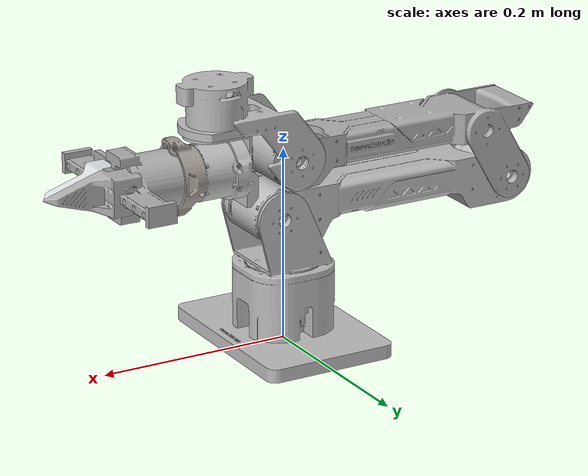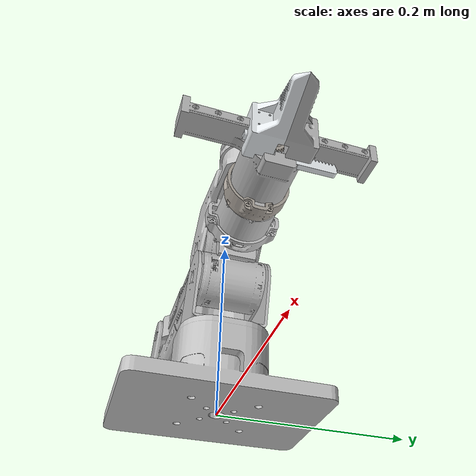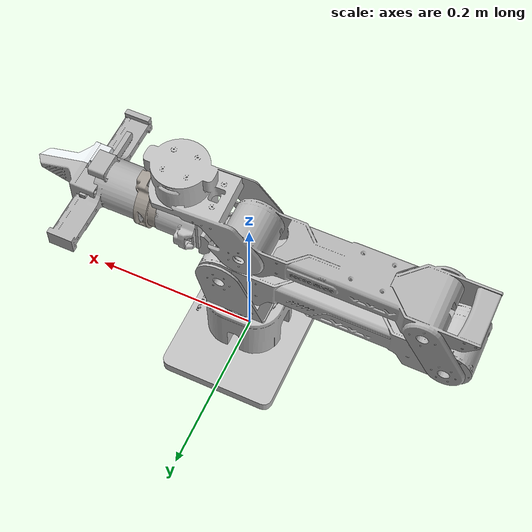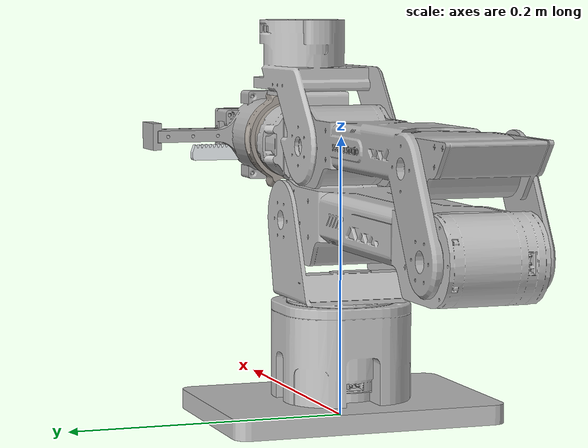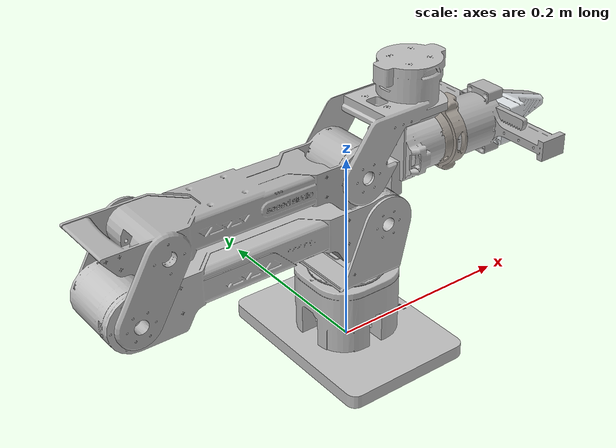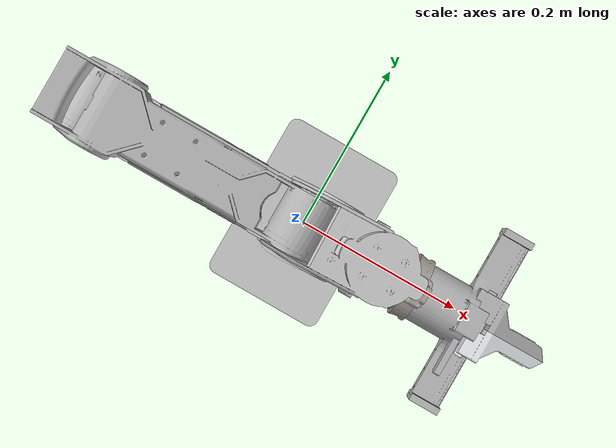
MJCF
<mujoco model="joyarm_dm">
  <compiler angle="radian"/>

  <asset>
    <mesh name="link0" content_type="model/stl" file="../meshes/link0.STL"/>
    <mesh name="link1" content_type="model/stl" file="../meshes/link1.STL"/>
    <mesh name="link2" content_type="model/stl" file="../meshes/link2.STL"/>
    <mesh name="link3" content_type="model/stl" file="../meshes/link3.STL"/>
    <mesh name="link4" content_type="model/stl" file="../meshes/link4.STL"/>
    <mesh name="link5" content_type="model/stl" file="../meshes/link5.STL"/>
    <mesh name="link6" content_type="model/stl" file="../meshes/link6.STL"/>
    <mesh name="link_end0" content_type="model/stl" file="../meshes/link_end0.STL"/>
    <mesh name="link_end1" content_type="model/stl" file="../meshes/link_end1.STL"/>
    <mesh name="link_end_fingerright" content_type="model/stl" file="../meshes/link_end_fingerright.STL"/>
    <mesh name="link_end_fingerleft" content_type="model/stl" file="../meshes/link_end_fingerleft.STL"/>
  </asset>

  <worldbody>
    <geom type="mesh" rgba="0.75294 0.75294 0.75294 1" mesh="link0"/>
    <body name="link1" pos="0 0 0.1402">
      <inertial pos="0.006732 -0.002604 -0.030755" quat="0.903333 0.352003 0.22575 -0.0954998" mass="0.217" diaginertia="0.000360731 0.000254975 0.000217013"/>
      <joint name="joint1" range="-2.8 2.8" actuatorfrcrange="-30 30"/>
      <geom type="mesh" rgba="0.75294 0.75294 0.75294 1" mesh="link1"/>
      <body name="link2" pos="0.02 0 0" quat="-2.59735e-06 2.59734e-06 -0.707105 0.707108">
        <inertial pos="0.133871 -0.001318 -0.001129" quat="0.497215 0.502645 0.495442 0.504642" mass="1.196" diaginertia="0.0172404 0.0170399 0.000684457"/>
        <joint name="joint2" range="-3.14 0" actuatorfrcrange="-30 30"/>
        <geom pos="0 0 0" quat="0 1 0 0" type="mesh" rgba="0.75294 0.75294 0.75294 1" mesh="link2"/>
        <body name="link3" pos="0.264 0 0" quat="0 0.109278 -0.994011 0">
          <inertial pos="0.159621 -0.015443 0.000257" quat="0.461058 0.464949 0.532313 0.536555" mass="0.799" diaginertia="0.0084331 0.00830293 0.000688401"/>
          <joint name="joint3" range="-3.14 0" actuatorfrcrange="-30 30"/>
          <geom type="mesh" rgba="0.69804 0.69804 0.69804 1" mesh="link3"/>
          <body name="link4" pos="0.24854 0 0" quat="0.993886 0.00168359 -0.0153046 0.109333">
            <inertial pos="0.062723 -0.049703 -0.000784" quat="0.611222 0.624901 0.363212 0.322465" mass="0.473" diaginertia="0.000791795 0.000708378 0.000269847"/>
            <joint name="joint4" range="-1.57 1.57" actuatorfrcrange="-9 9"/>
            <geom type="mesh" rgba="0.75294 0.75294 0.75294 1" mesh="link4"/>
            <body name="link5" pos="0.078283 0.0024911 -0.0016418" quat="-0.492294 0.49219 -0.507693 -0.507586">
              <inertial pos="0.00077 0.001115 -0.003159" quat="0.998027 -0.0627847 0.000432083 0.000315532" mass="0.375" diaginertia="0.000204066 0.000203089 0.000158845"/>
              <joint name="joint5" range="-1.57 1.57" actuatorfrcrange="-9 9"/>
              <geom type="mesh" rgba="0.75294 0.75294 0.75294 1" mesh="link5"/>
              <body name="link6" pos="0.00076939 -1.1537e-05 0" quat="0.707141 0.707073 0 0">
                <inertial pos="-8.44572e-05 -1.62979e-06 0.0656355" quat="0.501871 0.49664 0.497904 0.503553" mass="0.502" diaginertia="0.000670806 0.000479703 0.00038643"/>
                <joint name="joint6" range="-3.14 3.14" actuatorfrcrange="-9 9"/>
                <geom type="mesh" rgba="0.64706 0.61961 0.58824 1" mesh="link6"/>
                <geom pos="0 0 0.032692" quat="0.499998 0.5 -0.5 0.500002" type="mesh" rgba="0.69804 0.69804 0.69804 1" mesh="link_end0"/>
                <body name="link_end1" pos="-1.7815e-07 0 0.081192" quat="0.499998 0.5 -0.5 0.500002">
                  <inertial pos="0.009666 0 -5e-06" quat="0 0.701383 0 0.712784" mass="0.023" diaginertia="1.70106e-06 1.7e-06 1.45294e-06"/>
                  <joint name="joint_end1" range="-5.49 0" actuatorfrcrange="-1.5 1.5" axis="1 0 0"/>
                  <geom type="mesh" rgba="0.64706 0.61961 0.58824 1" mesh="link_end1"/>
                </body>
                <body name="link_end_fingerright" pos="-2.78466e-05 1.30309e-05 0.118592" quat="0.499998 0.5 -0.5 0.500002">
                  <inertial pos="-0.005907 -0.011609 -0.002754" quat="0.386153 0.437908 -0.41182 0.699663" mass="0.085" diaginertia="4.46771e-05 3.7753e-05 2.15168e-05"/>
                  <joint name="joint_end_fingerright" type="slide" range="-0.04625 0" actuatorfrcrange="-178.15 178.15" axis="0 1 -0.00014746"/>
                  <geom type="mesh" rgba="0.89804 0.91765 0.92941 1" mesh="link_end_fingerright"/>
                </body>
                <body name="link_end_fingerleft" pos="2.72155e-05 -1.30309e-05 0.118592" quat="0.499998 0.5 -0.5 0.500002">
                  <inertial pos="-0.005907 0.011609 0.002754" quat="0.699663 0.41182 -0.437908 0.386153" mass="0.085" diaginertia="4.46771e-05 3.7753e-05 2.15168e-05"/>
                  <joint name="joint_end_fingerleft" type="slide" range="-0.04625 0" actuatorfrcrange="-178.15 178.15" axis="0 -1 0.00014746"/>
                  <geom type="mesh" rgba="0.69804 0.69804 0.69804 1" mesh="link_end_fingerleft"/>
                </body>
              </body>
            </body>
          </body>
        </body>
      </body>
    </body>
  </worldbody>

  <equality>
    <joint joint1="joint_end_fingerright" joint2="joint_end1" polycoef="0 0.00842 0 0 0"/>
    <joint joint1="joint_end_fingerleft" joint2="joint_end1" polycoef="0 0.00842 0 0 0"/>
  </equality>
  <actuator>
    <motor name="joint1_motor" joint="joint1" gear="1" ctrllimited="true" ctrlrange="-30 30"/>
    <motor name="joint2_motor" joint="joint2" gear="1" ctrllimited="true" ctrlrange="-30 30"/>
    <motor name="joint3_motor" joint="joint3" gear="1" ctrllimited="true" ctrlrange="-30 30"/>
    <motor name="joint4_motor" joint="joint4" gear="1" ctrllimited="true" ctrlrange="-9 9"/>
    <motor name="joint5_motor" joint="joint5" gear="1" ctrllimited="true" ctrlrange="-9 9"/>
    <motor name="joint6_motor" joint="joint6" gear="1" ctrllimited="true" ctrlrange="-9 9"/>
  </actuator>

</mujoco>
